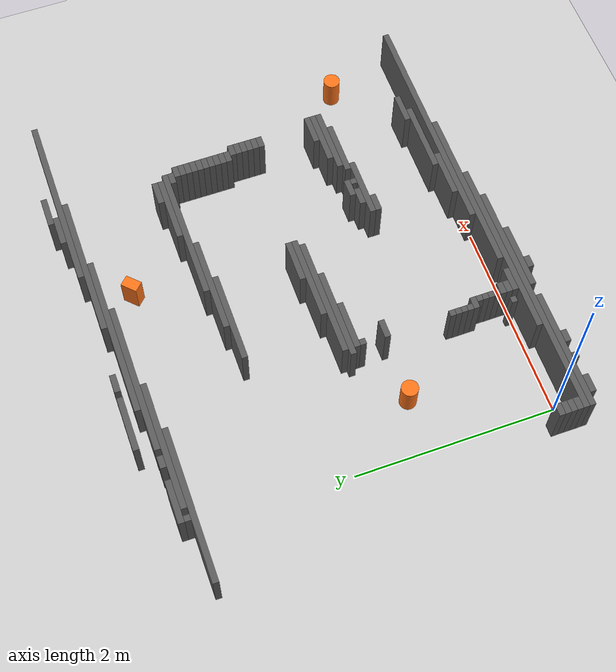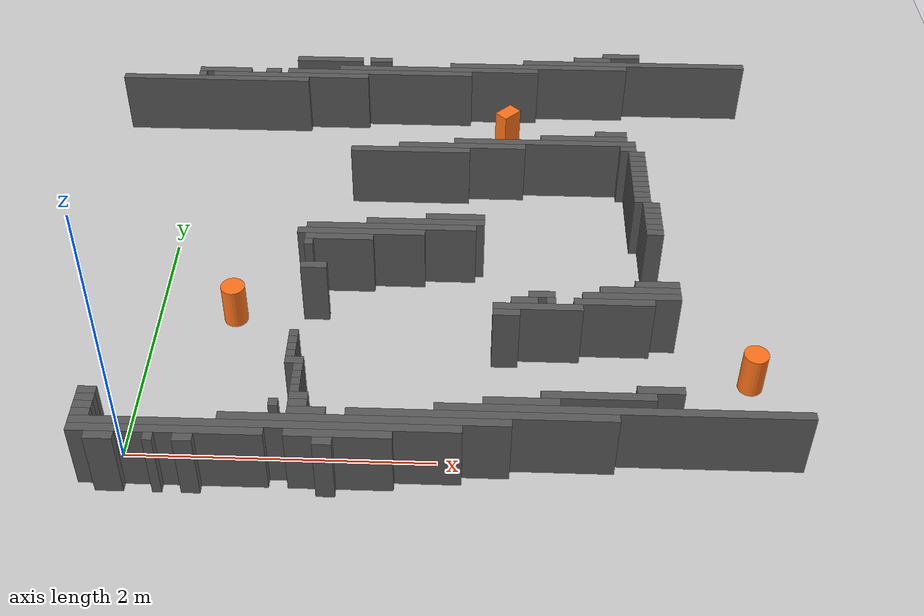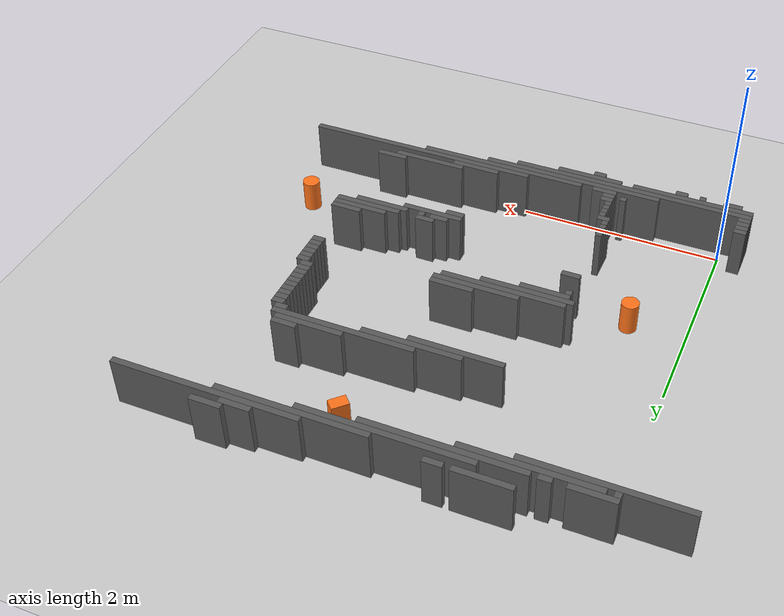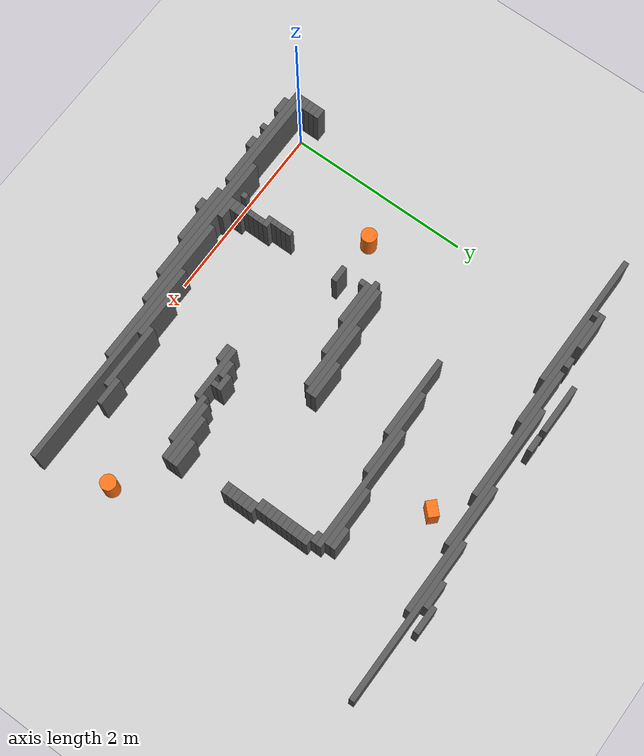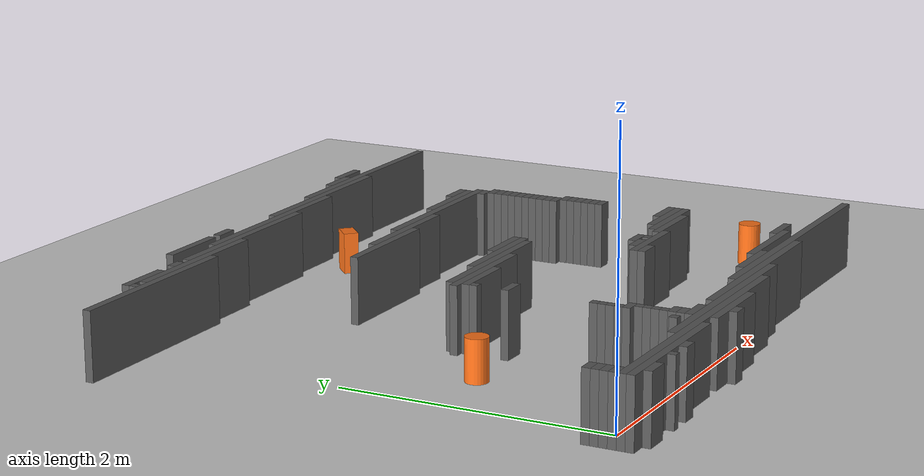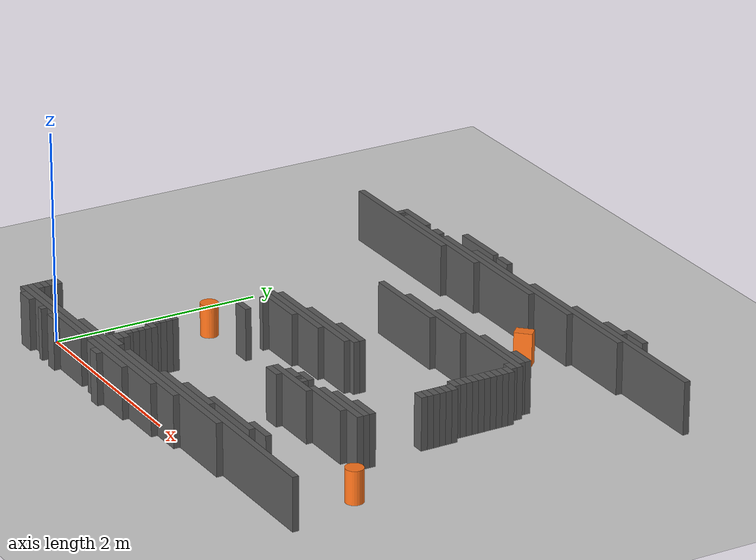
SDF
<sdf version="1.6">
 <world name="my_map">
  <include><uri>model://sun</uri></include>
  <model name="ground_plane">
   <static>true</static>
   <link name="link">
    <collision name="collision">
     <geometry><plane><normal>0 0 1</normal><size>20 20</size></plane></geometry>
    </collision>
    <visual name="visual">
     <geometry><plane><normal>0 0 1</normal><size>20 20</size></plane></geometry>
     <material>
      <script><uri>file://media/materials/scripts/gazebo.material</uri><name>Gazebo/Grey</name></script>
     </material>
    </visual>
   </link>
  </model>
  <model name="my_map_walls">
   <static>true</static>
   <link name="wall_004">
    <pose>3.3900 3.9420 0.2500 0 0 0</pose>
    <collision name="collision"><geometry><box><size>0.3000 0.0600 0.5000</size></box></geometry></collision>
    <visual name="visual">
     <geometry><box><size>0.3000 0.0600 0.5000</size></box></geometry>
     <material><ambient>0.25 0.25 0.25 1</ambient><diffuse>0.35 0.35 0.35 1</diffuse></material>
    </visual>
   </link>
   <link name="wall_006">
    <pose>3.1500 3.8820 0.2500 0 0 0</pose>
    <collision name="collision"><geometry><box><size>0.3000 0.0600 0.5000</size></box></geometry></collision>
    <visual name="visual">
     <geometry><box><size>0.3000 0.0600 0.5000</size></box></geometry>
     <material><ambient>0.25 0.25 0.25 1</ambient><diffuse>0.35 0.35 0.35 1</diffuse></material>
    </visual>
   </link>
   <link name="wall_008">
    <pose>0.9900 3.8220 0.2500 0 0 0</pose>
    <collision name="collision"><geometry><box><size>0.5400 0.0600 0.5000</size></box></geometry></collision>
    <visual name="visual">
     <geometry><box><size>0.5400 0.0600 0.5000</size></box></geometry>
     <material><ambient>0.25 0.25 0.25 1</ambient><diffuse>0.35 0.35 0.35 1</diffuse></material>
    </visual>
   </link>
   <link name="wall_009">
    <pose>1.4100 3.8220 0.2500 0 0 0</pose>
    <collision name="collision"><geometry><box><size>0.1800 0.0600 0.5000</size></box></geometry></collision>
    <visual name="visual">
     <geometry><box><size>0.1800 0.0600 0.5000</size></box></geometry>
     <material><ambient>0.25 0.25 0.25 1</ambient><diffuse>0.35 0.35 0.35 1</diffuse></material>
    </visual>
   </link>
   <link name="wall_010">
    <pose>3.4800 3.8220 0.2500 0 0 0</pose>
    <collision name="collision"><geometry><box><size>1.8000 0.0600 0.5000</size></box></geometry></collision>
    <visual name="visual">
     <geometry><box><size>1.8000 0.0600 0.5000</size></box></geometry>
     <material><ambient>0.25 0.25 0.25 1</ambient><diffuse>0.35 0.35 0.35 1</diffuse></material>
    </visual>
   </link>
   <link name="wall_011">
    <pose>2.7000 3.7620 0.2500 0 0 0</pose>
    <collision name="collision"><geometry><box><size>1.4400 0.0600 0.5000</size></box></geometry></collision>
    <visual name="visual">
     <geometry><box><size>1.4400 0.0600 0.5000</size></box></geometry>
     <material><ambient>0.25 0.25 0.25 1</ambient><diffuse>0.35 0.35 0.35 1</diffuse></material>
    </visual>
   </link>
   <link name="wall_013">
    <pose>1.8900 3.7020 0.2500 0 0 0</pose>
    <collision name="collision"><geometry><box><size>1.6200 0.0600 0.5000</size></box></geometry></collision>
    <visual name="visual">
     <geometry><box><size>1.6200 0.0600 0.5000</size></box></geometry>
     <material><ambient>0.25 0.25 0.25 1</ambient><diffuse>0.35 0.35 0.35 1</diffuse></material>
    </visual>
   </link>
   <link name="wall_016">
    <pose>0.1500 3.6420 0.2500 0 0 0</pose>
    <collision name="collision"><geometry><box><size>0.4200 0.0600 0.5000</size></box></geometry></collision>
    <visual name="visual">
     <geometry><box><size>0.4200 0.0600 0.5000</size></box></geometry>
     <material><ambient>0.25 0.25 0.25 1</ambient><diffuse>0.35 0.35 0.35 1</diffuse></material>
    </visual>
   </link>
   <link name="wall_017">
    <pose>0.5400 3.6420 0.2500 0 0 0</pose>
    <collision name="collision"><geometry><box><size>0.1200 0.0600 0.5000</size></box></geometry></collision>
    <visual name="visual">
     <geometry><box><size>0.1200 0.0600 0.5000</size></box></geometry>
     <material><ambient>0.25 0.25 0.25 1</ambient><diffuse>0.35 0.35 0.35 1</diffuse></material>
    </visual>
   </link>
   <link name="wall_018">
    <pose>1.4100 3.6420 0.2500 0 0 0</pose>
    <collision name="collision"><geometry><box><size>1.5000 0.0600 0.5000</size></box></geometry></collision>
    <visual name="visual">
     <geometry><box><size>1.5000 0.0600 0.5000</size></box></geometry>
     <material><ambient>0.25 0.25 0.25 1</ambient><diffuse>0.35 0.35 0.35 1</diffuse></material>
    </visual>
   </link>
   <link name="wall_023">
    <pose>-0.0300 3.5820 0.2500 0 0 0</pose>
    <collision name="collision"><geometry><box><size>0.0600 0.0600 0.5000</size></box></geometry></collision>
    <visual name="visual">
     <geometry><box><size>0.0600 0.0600 0.5000</size></box></geometry>
     <material><ambient>0.25 0.25 0.25 1</ambient><diffuse>0.35 0.35 0.35 1</diffuse></material>
    </visual>
   </link>
   <link name="wall_024">
    <pose>0.6900 3.5820 0.2500 0 0 0</pose>
    <collision name="collision"><geometry><box><size>1.2600 0.0600 0.5000</size></box></geometry></collision>
    <visual name="visual">
     <geometry><box><size>1.2600 0.0600 0.5000</size></box></geometry>
     <material><ambient>0.25 0.25 0.25 1</ambient><diffuse>0.35 0.35 0.35 1</diffuse></material>
    </visual>
   </link>
   <link name="wall_026">
    <pose>0.0900 3.5220 0.2500 0 0 0</pose>
    <collision name="collision"><geometry><box><size>1.5000 0.0600 0.5000</size></box></geometry></collision>
    <visual name="visual">
     <geometry><box><size>1.5000 0.0600 0.5000</size></box></geometry>
     <material><ambient>0.25 0.25 0.25 1</ambient><diffuse>0.35 0.35 0.35 1</diffuse></material>
    </visual>
   </link>
   <link name="wall_058">
    <pose>3.2400 2.8620 0.2500 0 0 0</pose>
    <collision name="collision"><geometry><box><size>0.2400 0.0600 0.5000</size></box></geometry></collision>
    <visual name="visual">
     <geometry><box><size>0.2400 0.0600 0.5000</size></box></geometry>
     <material><ambient>0.25 0.25 0.25 1</ambient><diffuse>0.35 0.35 0.35 1</diffuse></material>
    </visual>
   </link>
   <link name="wall_062">
    <pose>3.0300 2.8020 0.2500 0 0 0</pose>
    <collision name="collision"><geometry><box><size>0.6600 0.0600 0.5000</size></box></geometry></collision>
    <visual name="visual">
     <geometry><box><size>0.6600 0.0600 0.5000</size></box></geometry>
     <material><ambient>0.25 0.25 0.25 1</ambient><diffuse>0.35 0.35 0.35 1</diffuse></material>
    </visual>
   </link>
   <link name="wall_066">
    <pose>2.7300 2.7420 0.2500 0 0 0</pose>
    <collision name="collision"><geometry><box><size>1.3800 0.0600 0.5000</size></box></geometry></collision>
    <visual name="visual">
     <geometry><box><size>1.3800 0.0600 0.5000</size></box></geometry>
     <material><ambient>0.25 0.25 0.25 1</ambient><diffuse>0.35 0.35 0.35 1</diffuse></material>
    </visual>
   </link>
   <link name="wall_070">
    <pose>2.1000 2.6820 0.2500 0 0 0</pose>
    <collision name="collision"><geometry><box><size>0.9600 0.0600 0.5000</size></box></geometry></collision>
    <visual name="visual">
     <geometry><box><size>0.9600 0.0600 0.5000</size></box></geometry>
     <material><ambient>0.25 0.25 0.25 1</ambient><diffuse>0.35 0.35 0.35 1</diffuse></material>
    </visual>
   </link>
   <link name="wall_071">
    <pose>3.3600 2.6820 0.2500 0 0 0</pose>
    <collision name="collision"><geometry><box><size>0.1200 0.0600 0.5000</size></box></geometry></collision>
    <visual name="visual">
     <geometry><box><size>0.1200 0.0600 0.5000</size></box></geometry>
     <material><ambient>0.25 0.25 0.25 1</ambient><diffuse>0.35 0.35 0.35 1</diffuse></material>
    </visual>
   </link>
   <link name="wall_075">
    <pose>1.7100 2.6220 0.2500 0 0 0</pose>
    <collision name="collision"><geometry><box><size>0.9000 0.0600 0.5000</size></box></geometry></collision>
    <visual name="visual">
     <geometry><box><size>0.9000 0.0600 0.5000</size></box></geometry>
     <material><ambient>0.25 0.25 0.25 1</ambient><diffuse>0.35 0.35 0.35 1</diffuse></material>
    </visual>
   </link>
   <link name="wall_076">
    <pose>3.4200 2.6220 0.2500 0 0 0</pose>
    <collision name="collision"><geometry><box><size>0.1200 0.0600 0.5000</size></box></geometry></collision>
    <visual name="visual">
     <geometry><box><size>0.1200 0.0600 0.5000</size></box></geometry>
     <material><ambient>0.25 0.25 0.25 1</ambient><diffuse>0.35 0.35 0.35 1</diffuse></material>
    </visual>
   </link>
   <link name="wall_080">
    <pose>3.4200 2.5620 0.2500 0 0 0</pose>
    <collision name="collision"><geometry><box><size>0.1200 0.0600 0.5000</size></box></geometry></collision>
    <visual name="visual">
     <geometry><box><size>0.1200 0.0600 0.5000</size></box></geometry>
     <material><ambient>0.25 0.25 0.25 1</ambient><diffuse>0.35 0.35 0.35 1</diffuse></material>
    </visual>
   </link>
   <link name="wall_084">
    <pose>3.4200 2.5020 0.2500 0 0 0</pose>
    <collision name="collision"><geometry><box><size>0.1200 0.0600 0.5000</size></box></geometry></collision>
    <visual name="visual">
     <geometry><box><size>0.1200 0.0600 0.5000</size></box></geometry>
     <material><ambient>0.25 0.25 0.25 1</ambient><diffuse>0.35 0.35 0.35 1</diffuse></material>
    </visual>
   </link>
   <link name="wall_088">
    <pose>3.4200 2.4420 0.2500 0 0 0</pose>
    <collision name="collision"><geometry><box><size>0.1200 0.0600 0.5000</size></box></geometry></collision>
    <visual name="visual">
     <geometry><box><size>0.1200 0.0600 0.5000</size></box></geometry>
     <material><ambient>0.25 0.25 0.25 1</ambient><diffuse>0.35 0.35 0.35 1</diffuse></material>
    </visual>
   </link>
   <link name="wall_092">
    <pose>3.4200 2.3820 0.2500 0 0 0</pose>
    <collision name="collision"><geometry><box><size>0.1200 0.0600 0.5000</size></box></geometry></collision>
    <visual name="visual">
     <geometry><box><size>0.1200 0.0600 0.5000</size></box></geometry>
     <material><ambient>0.25 0.25 0.25 1</ambient><diffuse>0.35 0.35 0.35 1</diffuse></material>
    </visual>
   </link>
   <link name="wall_096">
    <pose>3.4200 2.3220 0.2500 0 0 0</pose>
    <collision name="collision"><geometry><box><size>0.1200 0.0600 0.5000</size></box></geometry></collision>
    <visual name="visual">
     <geometry><box><size>0.1200 0.0600 0.5000</size></box></geometry>
     <material><ambient>0.25 0.25 0.25 1</ambient><diffuse>0.35 0.35 0.35 1</diffuse></material>
    </visual>
   </link>
   <link name="wall_100">
    <pose>3.4200 2.2620 0.2500 0 0 0</pose>
    <collision name="collision"><geometry><box><size>0.1200 0.0600 0.5000</size></box></geometry></collision>
    <visual name="visual">
     <geometry><box><size>0.1200 0.0600 0.5000</size></box></geometry>
     <material><ambient>0.25 0.25 0.25 1</ambient><diffuse>0.35 0.35 0.35 1</diffuse></material>
    </visual>
   </link>
   <link name="wall_104">
    <pose>3.4200 2.2020 0.2500 0 0 0</pose>
    <collision name="collision"><geometry><box><size>0.1200 0.0600 0.5000</size></box></geometry></collision>
    <visual name="visual">
     <geometry><box><size>0.1200 0.0600 0.5000</size></box></geometry>
     <material><ambient>0.25 0.25 0.25 1</ambient><diffuse>0.35 0.35 0.35 1</diffuse></material>
    </visual>
   </link>
   <link name="wall_108">
    <pose>3.4200 2.1420 0.2500 0 0 0</pose>
    <collision name="collision"><geometry><box><size>0.1200 0.0600 0.5000</size></box></geometry></collision>
    <visual name="visual">
     <geometry><box><size>0.1200 0.0600 0.5000</size></box></geometry>
     <material><ambient>0.25 0.25 0.25 1</ambient><diffuse>0.35 0.35 0.35 1</diffuse></material>
    </visual>
   </link>
   <link name="wall_112">
    <pose>3.4200 2.0820 0.2500 0 0 0</pose>
    <collision name="collision"><geometry><box><size>0.1200 0.0600 0.5000</size></box></geometry></collision>
    <visual name="visual">
     <geometry><box><size>0.1200 0.0600 0.5000</size></box></geometry>
     <material><ambient>0.25 0.25 0.25 1</ambient><diffuse>0.35 0.35 0.35 1</diffuse></material>
    </visual>
   </link>
   <link name="wall_116">
    <pose>3.4800 2.0220 0.2500 0 0 0</pose>
    <collision name="collision"><geometry><box><size>0.1200 0.0600 0.5000</size></box></geometry></collision>
    <visual name="visual">
     <geometry><box><size>0.1200 0.0600 0.5000</size></box></geometry>
     <material><ambient>0.25 0.25 0.25 1</ambient><diffuse>0.35 0.35 0.35 1</diffuse></material>
    </visual>
   </link>
   <link name="wall_120">
    <pose>3.4800 1.9620 0.2500 0 0 0</pose>
    <collision name="collision"><geometry><box><size>0.1200 0.0600 0.5000</size></box></geometry></collision>
    <visual name="visual">
     <geometry><box><size>0.1200 0.0600 0.5000</size></box></geometry>
     <material><ambient>0.25 0.25 0.25 1</ambient><diffuse>0.35 0.35 0.35 1</diffuse></material>
    </visual>
   </link>
   <link name="wall_124">
    <pose>3.4800 1.9020 0.2500 0 0 0</pose>
    <collision name="collision"><geometry><box><size>0.1200 0.0600 0.5000</size></box></geometry></collision>
    <visual name="visual">
     <geometry><box><size>0.1200 0.0600 0.5000</size></box></geometry>
     <material><ambient>0.25 0.25 0.25 1</ambient><diffuse>0.35 0.35 0.35 1</diffuse></material>
    </visual>
   </link>
   <link name="wall_128">
    <pose>2.0700 1.8420 0.2500 0 0 0</pose>
    <collision name="collision"><geometry><box><size>0.4200 0.0600 0.5000</size></box></geometry></collision>
    <visual name="visual">
     <geometry><box><size>0.4200 0.0600 0.5000</size></box></geometry>
     <material><ambient>0.25 0.25 0.25 1</ambient><diffuse>0.35 0.35 0.35 1</diffuse></material>
    </visual>
   </link>
   <link name="wall_129">
    <pose>3.4800 1.8420 0.2500 0 0 0</pose>
    <collision name="collision"><geometry><box><size>0.1200 0.0600 0.5000</size></box></geometry></collision>
    <visual name="visual">
     <geometry><box><size>0.1200 0.0600 0.5000</size></box></geometry>
     <material><ambient>0.25 0.25 0.25 1</ambient><diffuse>0.35 0.35 0.35 1</diffuse></material>
    </visual>
   </link>
   <link name="wall_133">
    <pose>1.8600 1.7820 0.2500 0 0 0</pose>
    <collision name="collision"><geometry><box><size>0.8400 0.0600 0.5000</size></box></geometry></collision>
    <visual name="visual">
     <geometry><box><size>0.8400 0.0600 0.5000</size></box></geometry>
     <material><ambient>0.25 0.25 0.25 1</ambient><diffuse>0.35 0.35 0.35 1</diffuse></material>
    </visual>
   </link>
   <link name="wall_134">
    <pose>3.4800 1.7820 0.2500 0 0 0</pose>
    <collision name="collision"><geometry><box><size>0.1200 0.0600 0.5000</size></box></geometry></collision>
    <visual name="visual">
     <geometry><box><size>0.1200 0.0600 0.5000</size></box></geometry>
     <material><ambient>0.25 0.25 0.25 1</ambient><diffuse>0.35 0.35 0.35 1</diffuse></material>
    </visual>
   </link>
   <link name="wall_138">
    <pose>1.6200 1.7220 0.2500 0 0 0</pose>
    <collision name="collision"><geometry><box><size>1.2000 0.0600 0.5000</size></box></geometry></collision>
    <visual name="visual">
     <geometry><box><size>1.2000 0.0600 0.5000</size></box></geometry>
     <material><ambient>0.25 0.25 0.25 1</ambient><diffuse>0.35 0.35 0.35 1</diffuse></material>
    </visual>
   </link>
   <link name="wall_139">
    <pose>3.4800 1.7220 0.2500 0 0 0</pose>
    <collision name="collision"><geometry><box><size>0.1200 0.0600 0.5000</size></box></geometry></collision>
    <visual name="visual">
     <geometry><box><size>0.1200 0.0600 0.5000</size></box></geometry>
     <material><ambient>0.25 0.25 0.25 1</ambient><diffuse>0.35 0.35 0.35 1</diffuse></material>
    </visual>
   </link>
   <link name="wall_142">
    <pose>1.4100 1.6620 0.2500 0 0 0</pose>
    <collision name="collision"><geometry><box><size>0.9000 0.0600 0.5000</size></box></geometry></collision>
    <visual name="visual">
     <geometry><box><size>0.9000 0.0600 0.5000</size></box></geometry>
     <material><ambient>0.25 0.25 0.25 1</ambient><diffuse>0.35 0.35 0.35 1</diffuse></material>
    </visual>
   </link>
   <link name="wall_146">
    <pose>1.2600 1.6020 0.2500 0 0 0</pose>
    <collision name="collision"><geometry><box><size>0.4800 0.0600 0.5000</size></box></geometry></collision>
    <visual name="visual">
     <geometry><box><size>0.4800 0.0600 0.5000</size></box></geometry>
     <material><ambient>0.25 0.25 0.25 1</ambient><diffuse>0.35 0.35 0.35 1</diffuse></material>
    </visual>
   </link>
   <link name="wall_151">
    <pose>1.0500 1.5420 0.2500 0 0 0</pose>
    <collision name="collision"><geometry><box><size>0.0600 0.0600 0.5000</size></box></geometry></collision>
    <visual name="visual">
     <geometry><box><size>0.0600 0.0600 0.5000</size></box></geometry>
     <material><ambient>0.25 0.25 0.25 1</ambient><diffuse>0.35 0.35 0.35 1</diffuse></material>
    </visual>
   </link>
   <link name="wall_165">
    <pose>1.1100 1.3020 0.2500 0 0 0</pose>
    <collision name="collision"><geometry><box><size>0.1800 0.0600 0.5000</size></box></geometry></collision>
    <visual name="visual">
     <geometry><box><size>0.1800 0.0600 0.5000</size></box></geometry>
     <material><ambient>0.25 0.25 0.25 1</ambient><diffuse>0.35 0.35 0.35 1</diffuse></material>
    </visual>
   </link>
   <link name="wall_172">
    <pose>3.4500 1.1820 0.2500 0 0 0</pose>
    <collision name="collision"><geometry><box><size>0.3000 0.0600 0.5000</size></box></geometry></collision>
    <visual name="visual">
     <geometry><box><size>0.3000 0.0600 0.5000</size></box></geometry>
     <material><ambient>0.25 0.25 0.25 1</ambient><diffuse>0.35 0.35 0.35 1</diffuse></material>
    </visual>
   </link>
   <link name="wall_175">
    <pose>3.3300 1.1220 0.2500 0 0 0</pose>
    <collision name="collision"><geometry><box><size>0.5400 0.0600 0.5000</size></box></geometry></collision>
    <visual name="visual">
     <geometry><box><size>0.5400 0.0600 0.5000</size></box></geometry>
     <material><ambient>0.25 0.25 0.25 1</ambient><diffuse>0.35 0.35 0.35 1</diffuse></material>
    </visual>
   </link>
   <link name="wall_178">
    <pose>2.6700 1.0620 0.2500 0 0 0</pose>
    <collision name="collision"><geometry><box><size>0.1800 0.0600 0.5000</size></box></geometry></collision>
    <visual name="visual">
     <geometry><box><size>0.1800 0.0600 0.5000</size></box></geometry>
     <material><ambient>0.25 0.25 0.25 1</ambient><diffuse>0.35 0.35 0.35 1</diffuse></material>
    </visual>
   </link>
   <link name="wall_179">
    <pose>3.2700 1.0620 0.2500 0 0 0</pose>
    <collision name="collision"><geometry><box><size>0.6600 0.0600 0.5000</size></box></geometry></collision>
    <visual name="visual">
     <geometry><box><size>0.6600 0.0600 0.5000</size></box></geometry>
     <material><ambient>0.25 0.25 0.25 1</ambient><diffuse>0.35 0.35 0.35 1</diffuse></material>
    </visual>
   </link>
   <link name="wall_182">
    <pose>2.5500 1.0020 0.2500 0 0 0</pose>
    <collision name="collision"><geometry><box><size>0.1800 0.0600 0.5000</size></box></geometry></collision>
    <visual name="visual">
     <geometry><box><size>0.1800 0.0600 0.5000</size></box></geometry>
     <material><ambient>0.25 0.25 0.25 1</ambient><diffuse>0.35 0.35 0.35 1</diffuse></material>
    </visual>
   </link>
   <link name="wall_183">
    <pose>2.7300 1.0020 0.2500 0 0 0</pose>
    <collision name="collision"><geometry><box><size>0.0600 0.0600 0.5000</size></box></geometry></collision>
    <visual name="visual">
     <geometry><box><size>0.0600 0.0600 0.5000</size></box></geometry>
     <material><ambient>0.25 0.25 0.25 1</ambient><diffuse>0.35 0.35 0.35 1</diffuse></material>
    </visual>
   </link>
   <link name="wall_184">
    <pose>3.1500 1.0020 0.2500 0 0 0</pose>
    <collision name="collision"><geometry><box><size>0.5400 0.0600 0.5000</size></box></geometry></collision>
    <visual name="visual">
     <geometry><box><size>0.5400 0.0600 0.5000</size></box></geometry>
     <material><ambient>0.25 0.25 0.25 1</ambient><diffuse>0.35 0.35 0.35 1</diffuse></material>
    </visual>
   </link>
   <link name="wall_187">
    <pose>2.6400 0.9420 0.2500 0 0 0</pose>
    <collision name="collision"><geometry><box><size>0.6000 0.0600 0.5000</size></box></geometry></collision>
    <visual name="visual">
     <geometry><box><size>0.6000 0.0600 0.5000</size></box></geometry>
     <material><ambient>0.25 0.25 0.25 1</ambient><diffuse>0.35 0.35 0.35 1</diffuse></material>
    </visual>
   </link>
   <link name="wall_190">
    <pose>2.4300 0.8820 0.2500 0 0 0</pose>
    <collision name="collision"><geometry><box><size>0.1800 0.0600 0.5000</size></box></geometry></collision>
    <visual name="visual">
     <geometry><box><size>0.1800 0.0600 0.5000</size></box></geometry>
     <material><ambient>0.25 0.25 0.25 1</ambient><diffuse>0.35 0.35 0.35 1</diffuse></material>
    </visual>
   </link>
   <link name="wall_199">
    <pose>1.0500 0.6420 0.2500 0 0 0</pose>
    <collision name="collision"><geometry><box><size>0.0600 0.0600 0.5000</size></box></geometry></collision>
    <visual name="visual">
     <geometry><box><size>0.0600 0.0600 0.5000</size></box></geometry>
     <material><ambient>0.25 0.25 0.25 1</ambient><diffuse>0.35 0.35 0.35 1</diffuse></material>
    </visual>
   </link>
   <link name="wall_202">
    <pose>1.0500 0.5820 0.2500 0 0 0</pose>
    <collision name="collision"><geometry><box><size>0.0600 0.0600 0.5000</size></box></geometry></collision>
    <visual name="visual">
     <geometry><box><size>0.0600 0.0600 0.5000</size></box></geometry>
     <material><ambient>0.25 0.25 0.25 1</ambient><diffuse>0.35 0.35 0.35 1</diffuse></material>
    </visual>
   </link>
   <link name="wall_205">
    <pose>1.0500 0.5220 0.2500 0 0 0</pose>
    <collision name="collision"><geometry><box><size>0.0600 0.0600 0.5000</size></box></geometry></collision>
    <visual name="visual">
     <geometry><box><size>0.0600 0.0600 0.5000</size></box></geometry>
     <material><ambient>0.25 0.25 0.25 1</ambient><diffuse>0.35 0.35 0.35 1</diffuse></material>
    </visual>
   </link>
   <link name="wall_208">
    <pose>1.0500 0.4620 0.2500 0 0 0</pose>
    <collision name="collision"><geometry><box><size>0.0600 0.0600 0.5000</size></box></geometry></collision>
    <visual name="visual">
     <geometry><box><size>0.0600 0.0600 0.5000</size></box></geometry>
     <material><ambient>0.25 0.25 0.25 1</ambient><diffuse>0.35 0.35 0.35 1</diffuse></material>
    </visual>
   </link>
   <link name="wall_211">
    <pose>1.0800 0.4020 0.2500 0 0 0</pose>
    <collision name="collision"><geometry><box><size>0.1200 0.0600 0.5000</size></box></geometry></collision>
    <visual name="visual">
     <geometry><box><size>0.1200 0.0600 0.5000</size></box></geometry>
     <material><ambient>0.25 0.25 0.25 1</ambient><diffuse>0.35 0.35 0.35 1</diffuse></material>
    </visual>
   </link>
   <link name="wall_214">
    <pose>1.1100 0.3420 0.2500 0 0 0</pose>
    <collision name="collision"><geometry><box><size>0.0600 0.0600 0.5000</size></box></geometry></collision>
    <visual name="visual">
     <geometry><box><size>0.0600 0.0600 0.5000</size></box></geometry>
     <material><ambient>0.25 0.25 0.25 1</ambient><diffuse>0.35 0.35 0.35 1</diffuse></material>
    </visual>
   </link>
   <link name="wall_217">
    <pose>1.1100 0.2820 0.2500 0 0 0</pose>
    <collision name="collision"><geometry><box><size>0.0600 0.0600 0.5000</size></box></geometry></collision>
    <visual name="visual">
     <geometry><box><size>0.0600 0.0600 0.5000</size></box></geometry>
     <material><ambient>0.25 0.25 0.25 1</ambient><diffuse>0.35 0.35 0.35 1</diffuse></material>
    </visual>
   </link>
   <link name="wall_220">
    <pose>1.1100 0.2220 0.2500 0 0 0</pose>
    <collision name="collision"><geometry><box><size>0.0600 0.0600 0.5000</size></box></geometry></collision>
    <visual name="visual">
     <geometry><box><size>0.0600 0.0600 0.5000</size></box></geometry>
     <material><ambient>0.25 0.25 0.25 1</ambient><diffuse>0.35 0.35 0.35 1</diffuse></material>
    </visual>
   </link>
   <link name="wall_221">
    <pose>3.3900 0.2220 0.2500 0 0 0</pose>
    <collision name="collision"><geometry><box><size>0.3000 0.0600 0.5000</size></box></geometry></collision>
    <visual name="visual">
     <geometry><box><size>0.3000 0.0600 0.5000</size></box></geometry>
     <material><ambient>0.25 0.25 0.25 1</ambient><diffuse>0.35 0.35 0.35 1</diffuse></material>
    </visual>
   </link>
   <link name="wall_225">
    <pose>1.1100 0.1620 0.2500 0 0 0</pose>
    <collision name="collision"><geometry><box><size>0.0600 0.0600 0.5000</size></box></geometry></collision>
    <visual name="visual">
     <geometry><box><size>0.0600 0.0600 0.5000</size></box></geometry>
     <material><ambient>0.25 0.25 0.25 1</ambient><diffuse>0.35 0.35 0.35 1</diffuse></material>
    </visual>
   </link>
   <link name="wall_226">
    <pose>3.0000 0.1620 0.2500 0 0 0</pose>
    <collision name="collision"><geometry><box><size>0.7200 0.0600 0.5000</size></box></geometry></collision>
    <visual name="visual">
     <geometry><box><size>0.7200 0.0600 0.5000</size></box></geometry>
     <material><ambient>0.25 0.25 0.25 1</ambient><diffuse>0.35 0.35 0.35 1</diffuse></material>
    </visual>
   </link>
   <link name="wall_229">
    <pose>-0.1800 0.1020 0.2500 0 0 0</pose>
    <collision name="collision"><geometry><box><size>0.1200 0.0600 0.5000</size></box></geometry></collision>
    <visual name="visual">
     <geometry><box><size>0.1200 0.0600 0.5000</size></box></geometry>
     <material><ambient>0.25 0.25 0.25 1</ambient><diffuse>0.35 0.35 0.35 1</diffuse></material>
    </visual>
   </link>
   <link name="wall_230">
    <pose>1.1400 0.1020 0.2500 0 0 0</pose>
    <collision name="collision"><geometry><box><size>0.1200 0.0600 0.5000</size></box></geometry></collision>
    <visual name="visual">
     <geometry><box><size>0.1200 0.0600 0.5000</size></box></geometry>
     <material><ambient>0.25 0.25 0.25 1</ambient><diffuse>0.35 0.35 0.35 1</diffuse></material>
    </visual>
   </link>
   <link name="wall_231">
    <pose>2.5200 0.1020 0.2500 0 0 0</pose>
    <collision name="collision"><geometry><box><size>0.4800 0.0600 0.5000</size></box></geometry></collision>
    <visual name="visual">
     <geometry><box><size>0.4800 0.0600 0.5000</size></box></geometry>
     <material><ambient>0.25 0.25 0.25 1</ambient><diffuse>0.35 0.35 0.35 1</diffuse></material>
    </visual>
   </link>
   <link name="wall_233">
    <pose>-0.1800 0.0420 0.2500 0 0 0</pose>
    <collision name="collision"><geometry><box><size>0.1200 0.0600 0.5000</size></box></geometry></collision>
    <visual name="visual">
     <geometry><box><size>0.1200 0.0600 0.5000</size></box></geometry>
     <material><ambient>0.25 0.25 0.25 1</ambient><diffuse>0.35 0.35 0.35 1</diffuse></material>
    </visual>
   </link>
   <link name="wall_234">
    <pose>0.9900 0.0420 0.2500 0 0 0</pose>
    <collision name="collision"><geometry><box><size>0.0600 0.0600 0.5000</size></box></geometry></collision>
    <visual name="visual">
     <geometry><box><size>0.0600 0.0600 0.5000</size></box></geometry>
     <material><ambient>0.25 0.25 0.25 1</ambient><diffuse>0.35 0.35 0.35 1</diffuse></material>
    </visual>
   </link>
   <link name="wall_235">
    <pose>1.1400 0.0420 0.2500 0 0 0</pose>
    <collision name="collision"><geometry><box><size>0.1200 0.0600 0.5000</size></box></geometry></collision>
    <visual name="visual">
     <geometry><box><size>0.1200 0.0600 0.5000</size></box></geometry>
     <material><ambient>0.25 0.25 0.25 1</ambient><diffuse>0.35 0.35 0.35 1</diffuse></material>
    </visual>
   </link>
   <link name="wall_236">
    <pose>3.1500 0.0420 0.2500 0 0 0</pose>
    <collision name="collision"><geometry><box><size>2.3400 0.0600 0.5000</size></box></geometry></collision>
    <visual name="visual">
     <geometry><box><size>2.3400 0.0600 0.5000</size></box></geometry>
     <material><ambient>0.25 0.25 0.25 1</ambient><diffuse>0.35 0.35 0.35 1</diffuse></material>
    </visual>
   </link>
   <link name="wall_237">
    <pose>-0.1800 -0.0180 0.2500 0 0 0</pose>
    <collision name="collision"><geometry><box><size>0.1200 0.0600 0.5000</size></box></geometry></collision>
    <visual name="visual">
     <geometry><box><size>0.1200 0.0600 0.5000</size></box></geometry>
     <material><ambient>0.25 0.25 0.25 1</ambient><diffuse>0.35 0.35 0.35 1</diffuse></material>
    </visual>
   </link>
   <link name="wall_238">
    <pose>1.2000 -0.0180 0.2500 0 0 0</pose>
    <collision name="collision"><geometry><box><size>0.2400 0.0600 0.5000</size></box></geometry></collision>
    <visual name="visual">
     <geometry><box><size>0.2400 0.0600 0.5000</size></box></geometry>
     <material><ambient>0.25 0.25 0.25 1</ambient><diffuse>0.35 0.35 0.35 1</diffuse></material>
    </visual>
   </link>
   <link name="wall_239">
    <pose>2.2800 -0.0180 0.2500 0 0 0</pose>
    <collision name="collision"><geometry><box><size>1.6800 0.0600 0.5000</size></box></geometry></collision>
    <visual name="visual">
     <geometry><box><size>1.6800 0.0600 0.5000</size></box></geometry>
     <material><ambient>0.25 0.25 0.25 1</ambient><diffuse>0.35 0.35 0.35 1</diffuse></material>
    </visual>
   </link>
   <link name="wall_240">
    <pose>-0.1800 -0.0780 0.2500 0 0 0</pose>
    <collision name="collision"><geometry><box><size>0.1200 0.0600 0.5000</size></box></geometry></collision>
    <visual name="visual">
     <geometry><box><size>0.1200 0.0600 0.5000</size></box></geometry>
     <material><ambient>0.25 0.25 0.25 1</ambient><diffuse>0.35 0.35 0.35 1</diffuse></material>
    </visual>
   </link>
   <link name="wall_241">
    <pose>1.5600 -0.0780 0.2500 0 0 0</pose>
    <collision name="collision"><geometry><box><size>1.8000 0.0600 0.5000</size></box></geometry></collision>
    <visual name="visual">
     <geometry><box><size>1.8000 0.0600 0.5000</size></box></geometry>
     <material><ambient>0.25 0.25 0.25 1</ambient><diffuse>0.35 0.35 0.35 1</diffuse></material>
    </visual>
   </link>
   <link name="wall_242">
    <pose>0.9600 -0.1380 0.2500 0 0 0</pose>
    <collision name="collision"><geometry><box><size>2.4000 0.0600 0.5000</size></box></geometry></collision>
    <visual name="visual">
     <geometry><box><size>2.4000 0.0600 0.5000</size></box></geometry>
     <material><ambient>0.25 0.25 0.25 1</ambient><diffuse>0.35 0.35 0.35 1</diffuse></material>
    </visual>
   </link>
   <link name="wall_243">
    <pose>0.3600 -0.1980 0.2500 0 0 0</pose>
    <collision name="collision"><geometry><box><size>1.2000 0.0600 0.5000</size></box></geometry></collision>
    <visual name="visual">
     <geometry><box><size>1.2000 0.0600 0.5000</size></box></geometry>
     <material><ambient>0.25 0.25 0.25 1</ambient><diffuse>0.35 0.35 0.35 1</diffuse></material>
    </visual>
   </link>
   <link name="wall_244">
    <pose>1.4100 -0.1980 0.2500 0 0 0</pose>
    <collision name="collision"><geometry><box><size>0.6600 0.0600 0.5000</size></box></geometry></collision>
    <visual name="visual">
     <geometry><box><size>0.6600 0.0600 0.5000</size></box></geometry>
     <material><ambient>0.25 0.25 0.25 1</ambient><diffuse>0.35 0.35 0.35 1</diffuse></material>
    </visual>
   </link>
   <link name="wall_245">
    <pose>-0.0300 -0.2580 0.2500 0 0 0</pose>
    <collision name="collision"><geometry><box><size>0.1800 0.0600 0.5000</size></box></geometry></collision>
    <visual name="visual">
     <geometry><box><size>0.1800 0.0600 0.5000</size></box></geometry>
     <material><ambient>0.25 0.25 0.25 1</ambient><diffuse>0.35 0.35 0.35 1</diffuse></material>
    </visual>
   </link>
   <link name="wall_246">
    <pose>0.2700 -0.2580 0.2500 0 0 0</pose>
    <collision name="collision"><geometry><box><size>0.0600 0.0600 0.5000</size></box></geometry></collision>
    <visual name="visual">
     <geometry><box><size>0.0600 0.0600 0.5000</size></box></geometry>
     <material><ambient>0.25 0.25 0.25 1</ambient><diffuse>0.35 0.35 0.35 1</diffuse></material>
    </visual>
   </link>
   <link name="wall_247">
    <pose>0.4800 -0.2580 0.2500 0 0 0</pose>
    <collision name="collision"><geometry><box><size>0.1200 0.0600 0.5000</size></box></geometry></collision>
    <visual name="visual">
     <geometry><box><size>0.1200 0.0600 0.5000</size></box></geometry>
     <material><ambient>0.25 0.25 0.25 1</ambient><diffuse>0.35 0.35 0.35 1</diffuse></material>
    </visual>
   </link>
   <link name="wall_248">
    <pose>1.3200 -0.2580 0.2500 0 0 0</pose>
    <collision name="collision"><geometry><box><size>0.1200 0.0600 0.5000</size></box></geometry></collision>
    <visual name="visual">
     <geometry><box><size>0.1200 0.0600 0.5000</size></box></geometry>
     <material><ambient>0.25 0.25 0.25 1</ambient><diffuse>0.35 0.35 0.35 1</diffuse></material>
    </visual>
   </link>
  </model>
  <model name="avoidance_obstacles">
   <static>true</static>
   <link name="obstacle_01">
    <pose>0.5400 1.2600 0.1575 0 0 0</pose>
    <collision name="collision">
     <geometry><cylinder><radius>0.0840</radius><length>0.3150</length></cylinder></geometry>
    </collision>
    <visual name="visual">
     <geometry><cylinder><radius>0.0840</radius><length>0.3150</length></cylinder></geometry>
     <material><ambient>1.0 0.35 0.05 1</ambient><diffuse>1.0 0.45 0.10 1</diffuse></material>
    </visual>
   </link>
   <link name="obstacle_03">
    <pose>2.4600 3.3840 0.1575 0 0 0.7854</pose>
    <collision name="collision"><geometry><box><size>0.1680 0.1120 0.3150</size></box></geometry></collision>
    <visual name="visual">
     <geometry><box><size>0.1680 0.1120 0.3150</size></box></geometry>
     <material><ambient>1.0 0.35 0.05 1</ambient><diffuse>1.0 0.45 0.10 1</diffuse></material>
    </visual>
   </link>
   <link name="obstacle_04">
    <pose>4.0800 0.7320 0.1575 0 0 0</pose>
    <collision name="collision">
     <geometry><cylinder><radius>0.0840</radius><length>0.3150</length></cylinder></geometry>
    </collision>
    <visual name="visual">
     <geometry><cylinder><radius>0.0840</radius><length>0.3150</length></cylinder></geometry>
     <material><ambient>1.0 0.35 0.05 1</ambient><diffuse>1.0 0.45 0.10 1</diffuse></material>
    </visual>
   </link>
  </model>
 </world>
</sdf>
